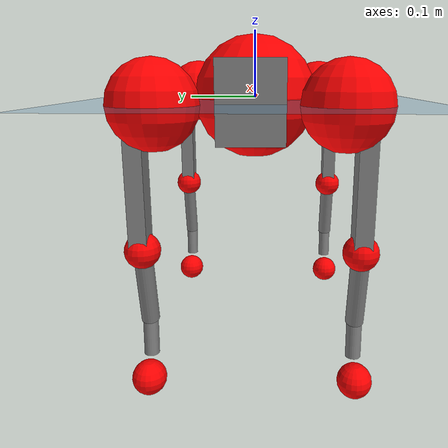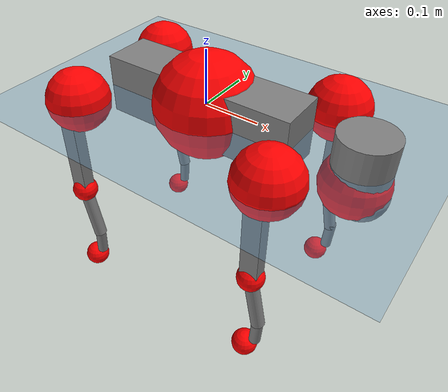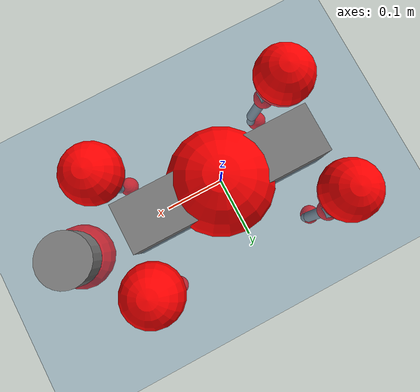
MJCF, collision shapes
<mujoco model="go2">
  <compiler angle="radian" assetdir="assets" balanceinertia="true" inertiafromgeom="false"/>

  <option timestep="0.005" density="1.2" viscosity="2e-05"/>

  <size nkey="1"/>

  <visual>
    <quality shadowsize="8192"/>
    <map shadowclip="0.5"/>
  </visual>

  <default>
    <default class="/">
      <geom contype="0" conaffinity="0" group="1" solref="-1000 -80"/>
      <site size="0.01 0.005 0.005" group="5"/>
      <general forcelimited="true" biastype="affine" gainprm="20" biasprm="0 -20 -0.5"/>
      <default class="go2">
        <joint armature="0.01" damping="0.01" frictionloss="0.2"/>
        <geom condim="1" margin="0.001"/>
        <default class="visual">
          <geom type="mesh" group="2"/>
        </default>
        <default class="collision">
          <geom group="3"/>
          <default class="foot">
            <geom size="0.022 0 0" condim="6" priority="1" friction="0.8 0.02 0.01" solimp="0.015 1 0.022"/>
          </default>
        </default>
        <default class="reward_collision_sphere">
          <geom group="5" rgba="1 0 0 1"/>
        </default>
      </default>
    </default>
  </default>

  <asset>
    <texture type="skybox" colorspace="auto" name="//unnamed_texture_0" builtin="gradient" rgb1="0.95 0.95 0.95" rgb2="0.95 0.95 0.95" width="100" height="600"/>
    <texture type="2d" colorspace="auto" name="texplane" builtin="checker" rgb1="0.345 0.575 0.748" rgb2="0.345 0.575 0.748" markrgb="1 1 1" width="512" height="512"/>
    <material name="MatPlane" class="/" texture="texplane" texuniform="true" texrepeat="2 2" specular="0.9"/>
    <material name="metal" class="/" rgba="0.9 0.95 0.95 1"/>
    <material name="black" class="/" rgba="0 0 0 1"/>
    <material name="white" class="/"/>
    <material name="gray" class="/" rgba="0.671705 0.692426 0.77427 1"/>
    <mesh name="base_0" class="/" file="base_0.obj"/>
    <mesh name="base_1" class="/" file="base_1.obj"/>
    <mesh name="base_2" class="/" file="base_2.obj"/>
    <mesh name="base_3" class="/" file="base_3.obj"/>
    <mesh name="base_4" class="/" file="base_4.obj"/>
    <mesh name="hip_0" class="/" file="hip_0.obj"/>
    <mesh name="hip_1" class="/" file="hip_1.obj"/>
    <mesh name="thigh_0" class="/" file="thigh_0.obj"/>
    <mesh name="thigh_1" class="/" file="thigh_1.obj"/>
    <mesh name="thigh_mirror_0" class="/" file="thigh_mirror_0.obj"/>
    <mesh name="thigh_mirror_1" class="/" file="thigh_mirror_1.obj"/>
    <mesh name="calf_0" class="/" file="calf_0.obj"/>
    <mesh name="calf_1" class="/" file="calf_1.obj"/>
    <mesh name="calf_mirror_0" class="/" file="calf_mirror_0.obj"/>
    <mesh name="calf_mirror_1" class="/" file="calf_mirror_1.obj"/>
    <mesh name="foot" class="/" file="foot.obj"/>
  </asset>

  <worldbody>
    <geom name="floor" class="/" size="100 100 0.125" type="plane" group="0" material="MatPlane"/>
    <light name="toplight_shadow" class="/" pos="0 0 5" dir="0.0990148 0.0990148 -0.990148" type="directional" ambient="0.04 0.04 0.04" diffuse="0.55 0.55 0.55" specular="0.12 0.12 0.12"/>
    <light name="toplight_fill" class="/" pos="0 0 5" dir="0.0990148 0.0990148 -0.990148" type="directional" castshadow="false" ambient="0.04 0.04 0.04" diffuse="0.3 0.3 0.3" specular="0.08 0.08 0.08"/>
    <body name="trunk" childclass="go2" pos="0.000619734 0.000415196 0.000901463" quat="1 0.000239789 -0.000317554 -0.000149022">
      <inertial pos="0.0214189 -0.000752037 -0.00493993" quat="-0.000347428 0.713656 -0.00103906 0.700496" mass="5.84986" diaginertia="0.0975638 0.0924772 0.0121558"/>
      <joint name="//unnamed_joint_0" type="free" armature="0" damping="0" frictionloss="0"/>
      <geom name="//unnamed_geom_1" class="visual" material="black" mesh="base_0"/>
      <geom name="//unnamed_geom_2" class="visual" material="black" mesh="base_1"/>
      <geom name="//unnamed_geom_3" class="visual" material="black" mesh="base_2"/>
      <geom name="//unnamed_geom_4" class="visual" material="white" mesh="base_3"/>
      <geom name="//unnamed_geom_5" class="visual" material="gray" mesh="base_4"/>
      <geom name="trunk_1" class="collision" size="0.177542 0.0441258 0.0538005" type="box"/>
      <geom name="trunk_2" class="collision" size="0.0471934 0.0424741" pos="0.278694 0 0.00865659" type="cylinder"/>
      <geom name="trunk_3" class="collision" size="0.0443618" pos="0.286517 0 -0.0519395"/>
      <geom name="//unnamed_geom_9" class="reward_collision_sphere" size="0.0943868"/>
      <geom name="//unnamed_geom_10" class="reward_collision_sphere" size="0.0566321" pos="0.273804 0 -0.0389546"/>
      <site name="imu" pos="-0.0296643 -0.00660884 0.0385778" size="0.00943868"/>
      <camera name="track" pos="0 -1.97615 0" quat="0.707107 0.707107 0 0" mode="trackcom"/>
      <camera name="ego_camera" pos="0.305096 0 0.0389546" quat="-0.5 -0.5 0.5 0.5"/>
      <body name="FL_hip" pos="0.188518 0.0458702 0.00226632" quat="1 0.000375928 -0.000124533 -0.000272125">
        <inertial pos="-0.00428182 0.00196201 -0.000400472" quat="0.497469 0.500111 0.506494 0.49586" mass="0.575356" diaginertia="0.000797808 0.00056571 0.000232607"/>
        <joint name="FL_hip_joint" pos="0 0 0" axis="0.999998 0.00181607 0.000865557" stiffness="0.000581453" range="-1.03716 1.05103" armature="0.00922477" damping="0.0102537" frictionloss="0.184551"/>
        <geom name="//unnamed_geom_11" class="visual" material="metal" mesh="hip_0"/>
        <geom name="//unnamed_geom_12" class="visual" material="gray" mesh="hip_1"/>
        <geom name="//unnamed_geom_13" class="collision" size="0.0434179 0.0188774" pos="0 0.0790458 0" quat="0.707107 0.707107 0 0" type="cylinder"/>
        <geom name="//unnamed_geom_14" class="reward_collision_sphere" size="0.0566321" pos="0 0.0691651 0"/>
        <body name="FL_thigh" pos="-0.000446441 0.0941237 0.00194422" quat="1 -4.02802e-05 0.00031731 -5.20568e-05">
          <inertial pos="-0.00401976 -0.0225925 -0.029514" quat="0.829539 0.0848421 -0.0198155 0.551611" mass="0.958743" diaginertia="0.00533243 0.00554346 0.000428177"/>
          <joint name="FL_thigh_joint" pos="0 0 0" axis="0.000339695 0.999998 0.0020036" range="-1.57268 3.51748" armature="0.00976342" damping="0" frictionloss="0.188978"/>
          <geom name="//unnamed_geom_15" class="visual" material="metal" mesh="thigh_0"/>
          <geom name="//unnamed_geom_16" class="visual" material="gray" mesh="thigh_1"/>
          <geom name="//unnamed_geom_17" class="collision" size="0.100522 0.0115624 0.0160458" pos="0 0 -0.0921926" quat="0.707107 0 0.707107 0" type="box"/>
          <body name="FL_calf" pos="0.000440549 0.000801685 -0.185043" quat="1 5.09792e-06 -0.000106062 -5.96971e-06">
            <inertial pos="0.00629031 0.000450728 -0.122445" quat="0.710282 0.00168903 -0.00480318 0.703899" mass="0.204473" diaginertia="0.0013212 0.00137212 2.58086e-05"/>
            <joint name="FL_calf_joint" pos="0 0 0" axis="-0.00534903 0.999982 0.00264599" range="-2.73997 -0.840485" armature="0.00940489" damping="0.00439599" frictionloss="0.186158"/>
            <geom name="//unnamed_geom_18" class="visual" material="gray" mesh="calf_0"/>
            <geom name="//unnamed_geom_19" class="visual" material="black" mesh="calf_1"/>
            <geom name="FL_calf0" class="collision" size="0.0113264 0.0566321" pos="0.00782298 0 -0.0519395" quat="0.994493 0 -0.104807 0" type="cylinder"/>
            <geom name="//unnamed_geom_21" class="collision" size="0.0103825 0.0306757" pos="0.0195575 0 -0.128117" quat="0.999688 0 0.0249974 0" type="cylinder"/>
            <geom name="//unnamed_geom_22" class="visual" pos="0 0 -0.184385" quat="1 0 0 0" material="black" mesh="foot"/>
            <geom name="FL_foot" class="foot" size="0.0169191" pos="-0.00195575 0 -0.184385"/>
            <geom name="//unnamed_geom_24" class="reward_collision_sphere" size="0.0235967"/>
            <geom name="//unnamed_geom_25" class="reward_collision_sphere" size="0.0235967" pos="-0.00195575 0 -0.184385"/>
            <site name="FL_foot" class="foot" pos="-0.00195575 0 -0.184385" size="0.00943868"/>
          </body>
        </body>
      </body>
      <body name="FR_hip" pos="0.188688 -0.0462032 0.00145498" quat="1 9.14358e-05 -9.52683e-05 -2.84408e-05">
        <inertial pos="-0.00535619 -0.00107295 -0.000689137" quat="0.496432 0.504454 0.501533 0.49754" mass="0.577013" diaginertia="0.000807651 0.000562359 0.000237181"/>
        <joint name="FR_hip_joint" pos="0 0 0" axis="0.999996 0.00266438 0.000187015" stiffness="0.00549063" range="-1.05975 1.04454" armature="0.00943597" damping="0.0135659" frictionloss="0.186484"/>
        <geom name="//unnamed_geom_26" class="visual" pos="0 1.06642e-09 4.57411e-08" quat="4.63268e-05 1 0 0" material="metal" mesh="hip_0"/>
        <geom name="//unnamed_geom_27" class="visual" pos="0 1.7288e-09 -1.13135e-07" quat="4.63268e-05 1 0 0" material="gray" mesh="hip_1"/>
        <geom name="//unnamed_geom_28" class="collision" size="0.0434179 0.0188774" pos="0 -0.0790458 0" quat="0.707107 0.707107 0 0" type="cylinder"/>
        <geom name="//unnamed_geom_29" class="reward_collision_sphere" size="0.0566321" pos="0 -0.0691651 0"/>
        <body name="FR_thigh" pos="-0.00070384 -0.0939287 0.00109165" quat="1 -4.94403e-05 1.29153e-05 2.77158e-05">
          <inertial pos="-0.00360625 0.0220411 -0.0290289" quat="0.553567 -0.0143588 0.0811962 0.828713" mass="0.976942" diaginertia="0.00543253 0.00554978 0.000430973"/>
          <joint name="FR_thigh_joint" pos="0 0 0" axis="-0.000875567 -0.999999 0.00106695" range="-3.50693 1.56438" armature="0.00955246" damping="0.0138545" frictionloss="0.192631"/>
          <geom name="//unnamed_geom_30" class="visual" material="metal" mesh="thigh_mirror_0"/>
          <geom name="//unnamed_geom_31" class="visual" material="gray" mesh="thigh_mirror_1"/>
          <geom name="//unnamed_geom_32" class="collision" size="0.100522 0.0115624 0.0160458" pos="0 0 -0.0921926" quat="0.707107 0 0.707107 0" type="box"/>
          <body name="FR_calf" pos="-0.000414333 3.6902e-05 -0.183725" quat="1 2.46773e-05 3.21947e-05 2.13687e-05">
            <inertial pos="0.00663149 0.000751161 -0.121218" quat="0.702429 -0.00860455 0.00315135 0.711695" mass="0.200193" diaginertia="0.00129796 0.00137491 2.52183e-05"/>
            <joint name="FR_calf_joint" pos="0 0 0" axis="0.00177924 -0.999991 0.00374582" range="0.839417 2.73989" armature="0.00919045" damping="0.00752292" frictionloss="0.18933"/>
            <geom name="//unnamed_geom_33" class="visual" material="gray" mesh="calf_mirror_0"/>
            <geom name="//unnamed_geom_34" class="visual" material="black" mesh="calf_mirror_1"/>
            <geom name="FR_calf0" class="collision" size="0.0122703 0.0566321" pos="0.00977873 0 -0.0519395" quat="0.995004 0 -0.0998334 0" type="cylinder"/>
            <geom name="//unnamed_geom_36" class="collision" size="0.0103825 0.0306757" pos="0.0195575 0 -0.128117" quat="0.999688 0 0.0249974 0" type="cylinder"/>
            <geom name="//unnamed_geom_37" class="visual" pos="0 0 -0.184385" quat="1 0 0 0" material="black" mesh="foot"/>
            <geom name="FR_foot" class="foot" size="0.0224055" pos="-0.00195575 0 -0.184385"/>
            <geom name="//unnamed_geom_39" class="reward_collision_sphere" size="0.0235967"/>
            <geom name="//unnamed_geom_40" class="reward_collision_sphere" size="0.0235967" pos="-0.00195575 0 -0.184385"/>
            <site name="FR_foot" class="foot" pos="-0.00195575 0 -0.184385" size="0.00943868"/>
          </body>
        </body>
      </body>
      <body name="RL_hip" pos="-0.189478 0.0470049 -0.001397" quat="1 8.9188e-05 -0.000206394 0.000422294">
        <inertial pos="0.00541155 0.00206527 -0.00106905" quat="0.506692 0.498655 0.496439 0.498152" mass="0.571876" diaginertia="0.000789504 0.000564746 0.000232157"/>
        <joint name="RL_hip_joint" pos="0 0 0" axis="-0.999893 0.00165862 -0.0145373" stiffness="0.00145082" range="-1.02502 1.0543" armature="0.00941886" damping="0.00794745" frictionloss="0.192986"/>
        <geom name="//unnamed_geom_41" class="visual" pos="-9.77567e-10 0 -1.91626e-07" quat="4.63268e-05 0 1 0" material="metal" mesh="hip_0"/>
        <geom name="//unnamed_geom_42" class="visual" pos="-1.58475e-09 0 -1.69945e-07" quat="4.63268e-05 0 1 0" material="gray" mesh="hip_1"/>
        <geom name="//unnamed_geom_43" class="collision" size="0.0434179 0.0188774" pos="0 0.0790458 0" quat="0.707107 0.707107 0 0" type="cylinder"/>
        <geom name="//unnamed_geom_44" class="reward_collision_sphere" size="0.0566321" pos="0 0.0691651 0"/>
        <body name="RL_thigh" pos="-0.000146891 0.0937709 -0.00111824" quat="1 7.84932e-06 -3.68009e-05 2.51602e-05">
          <inertial pos="-0.00384393 -0.021528 -0.0296706" quat="0.830383 0.0857762 -0.0201684 0.550181" mass="0.954561" diaginertia="0.00522619 0.00544396 0.000420873"/>
          <joint name="RL_thigh_joint" pos="0 0 0" axis="0.000857498 1 3.65383e-06" stiffness="0.000555611" range="-0.532383 4.53131" armature="0.00921963" damping="0.0112417" frictionloss="0.187369"/>
          <geom name="//unnamed_geom_45" class="visual" material="metal" mesh="thigh_0"/>
          <geom name="//unnamed_geom_46" class="visual" material="gray" mesh="thigh_1"/>
          <geom name="//unnamed_geom_47" class="collision" size="0.100522 0.0115624 0.0160458" pos="0 0 -0.0921926" quat="0.707107 0 0.707107 0" type="box"/>
          <body name="RL_calf" pos="0.00117743 -0.00163154 -0.184174" quat="1 -9.55522e-05 9.04622e-05 0.000184212">
            <inertial pos="0.00520736 0.000476429 -0.123081" quat="0.710036 0.00204208 -0.00434392 0.704149" mass="0.204143" diaginertia="0.00133477 0.00136795 2.59263e-05"/>
            <joint name="RL_calf_joint" pos="0 0 0" axis="0.0038591 0.999935 0.0107332" range="-2.72318 -0.837192" armature="0.00964837" damping="0.000734354" frictionloss="0.180279"/>
            <geom name="//unnamed_geom_48" class="visual" material="gray" mesh="calf_0"/>
            <geom name="//unnamed_geom_49" class="visual" material="black" mesh="calf_1"/>
            <geom name="RL_calf0" class="collision" size="0.0122703 0.0566321" pos="0.00977873 0 -0.0519395" quat="0.995004 0 -0.0998334 0" type="cylinder"/>
            <geom name="//unnamed_geom_51" class="collision" size="0.0103825 0.0306757" pos="0.0195575 0 -0.128117" quat="0.999688 0 0.0249974 0" type="cylinder"/>
            <geom name="//unnamed_geom_52" class="visual" pos="0 0 -0.184385" quat="1 0 0 0" material="black" mesh="foot"/>
            <geom name="RL_foot" class="foot" size="0.0185958" pos="-0.00195575 0 -0.184385"/>
            <geom name="//unnamed_geom_54" class="reward_collision_sphere" size="0.0235967"/>
            <geom name="//unnamed_geom_55" class="reward_collision_sphere" size="0.0235967" pos="-0.00195575 0 -0.184385"/>
            <site name="RL_foot" class="foot" pos="-0.00195575 0 -0.184385" size="0.00943868"/>
          </body>
        </body>
      </body>
      <body name="RR_hip" pos="-0.189241 -0.0466008 -0.00180831" quat="1 -0.000123676 -0.000213486 0.000192262">
        <inertial pos="0.00506035 -0.00167476 0.000644201" quat="0.499452 0.496971 0.498163 0.505373" mass="0.55703" diaginertia="0.000774667 0.000550093 0.000230147"/>
        <joint name="RR_hip_joint" pos="0 0 0" axis="-0.999991 0.00273883 0.0031423" range="-1.05884 1.05188" armature="0.0098968" damping="0.00291799" frictionloss="0.185331"/>
        <geom name="//unnamed_geom_56" class="visual" pos="9.7792e-10 1.06642e-09 -2.37367e-07" quat="2.14617e-09 4.63268e-05 4.63268e-05 -1" material="metal" mesh="hip_0"/>
        <geom name="//unnamed_geom_57" class="visual" pos="1.58388e-09 1.7288e-09 -5.68094e-08" quat="2.14617e-09 4.63268e-05 4.63268e-05 -1" material="gray" mesh="hip_1"/>
        <geom name="//unnamed_geom_58" class="collision" size="0.0434179 0.0188774" pos="0 -0.0790458 0" quat="0.707107 0.707107 0 0" type="cylinder"/>
        <geom name="//unnamed_geom_59" class="reward_collision_sphere" size="0.0566321" pos="0 -0.0691651 0"/>
        <body name="RR_thigh" pos="0.00063536 -0.0946074 -0.0005638" quat="1 -1.35608e-06 1.31529e-06 -6.04937e-07">
          <inertial pos="-0.00264308 0.0215315 -0.0283758" quat="0.551445 -0.0203126 0.0846962 0.829652" mass="0.971307" diaginertia="0.00527276 0.00550461 0.000426805"/>
          <joint name="RR_thigh_joint" pos="0 0 0" axis="0.010685 -0.999941 0.00202588" range="-4.55339 0.532767" armature="0.00930304" damping="0.0126292" frictionloss="0.189229"/>
          <geom name="//unnamed_geom_60" class="visual" material="metal" mesh="thigh_mirror_0"/>
          <geom name="//unnamed_geom_61" class="visual" material="gray" mesh="thigh_mirror_1"/>
          <geom name="//unnamed_geom_62" class="collision" size="0.100522 0.0115624 0.0160458" pos="0 0 -0.0921926" quat="0.707107 0 0.707107 0" type="box"/>
          <body name="RR_calf" pos="0.00183506 -9.60718e-05 -0.185048" quat="1 -9.49449e-05 -4.02937e-06 -6.94449e-05">
            <inertial pos="0.00566187 0.000608949 -0.122457" quat="0.704628 -0.00309498 0.00243316 0.709566" mass="0.206058" diaginertia="0.00133751 0.00139277 2.59932e-05"/>
            <joint name="RR_calf_joint" pos="0 0 0" axis="-0.00282685 -0.99997 0.00723539" range="0.835123 2.70796" armature="0.00979568" damping="0.00485783" frictionloss="0.188364"/>
            <geom name="//unnamed_geom_63" class="visual" material="gray" mesh="calf_mirror_0"/>
            <geom name="//unnamed_geom_64" class="visual" material="black" mesh="calf_mirror_1"/>
            <geom name="RR_calf0" class="collision" size="0.0122703 0.0566321" pos="0.00977873 0 -0.0519395" quat="0.995004 0 -0.0998334 0" type="cylinder"/>
            <geom name="//unnamed_geom_66" class="collision" size="0.0103825 0.0306757" pos="0.0195575 0 -0.128117" quat="0.999688 0 0.0249974 0" type="cylinder"/>
            <geom name="//unnamed_geom_67" class="visual" pos="0 0 -0.184385" quat="1 0 0 0" material="black" mesh="foot"/>
            <geom name="RR_foot" class="foot" size="0.0229146" pos="-0.00195575 0 -0.184385"/>
            <geom name="//unnamed_geom_69" class="reward_collision_sphere" size="0.0235967"/>
            <geom name="//unnamed_geom_70" class="reward_collision_sphere" size="0.0235967" pos="-0.00195575 0 -0.184385"/>
            <site name="RR_foot" class="foot" pos="-0.00195575 0 -0.184385" size="0.00943868"/>
          </body>
        </body>
      </body>
    </body>
  </worldbody>

  <contact>
    <pair class="/" geom1="floor" geom2="FL_foot" name="//unnamed_contact_0"/>
    <pair class="/" geom1="floor" geom2="FR_foot" name="//unnamed_contact_1"/>
    <pair class="/" geom1="floor" geom2="RL_foot" name="//unnamed_contact_2"/>
    <pair class="/" geom1="floor" geom2="RR_foot" name="//unnamed_contact_3"/>
  </contact>

  <actuator>
    <general name="FL_hip" class="/" joint="FL_hip_joint" forcerange="-22.731 22.731" gainprm="19.0116" biasprm="0 -19.0116 -0.472933"/>
    <general name="FL_thigh" class="/" joint="FL_thigh_joint" forcerange="-22.5442 22.5442" gainprm="19.0116" biasprm="0 -19.0116 -0.472933"/>
    <general name="FL_calf" class="/" joint="FL_calf_joint" forcerange="-41.9184 41.9184" gainprm="19.0116" biasprm="0 -19.0116 -0.472933"/>
    <general name="FR_hip" class="/" joint="FR_hip_joint" forcerange="-22.3392 22.3392" gainprm="19.0116" biasprm="0 -19.0116 -0.472933"/>
    <general name="FR_thigh" class="/" joint="FR_thigh_joint" forcerange="-21.5532 21.5532" gainprm="19.0116" biasprm="0 -19.0116 -0.472933"/>
    <general name="FR_calf" class="/" joint="FR_calf_joint" forcerange="-45.2533 45.2533" gainprm="19.0116" biasprm="0 -19.0116 -0.472933"/>
    <general name="RL_hip" class="/" joint="RL_hip_joint" forcerange="-22.9451 22.9451" gainprm="19.0116" biasprm="0 -19.0116 -0.472933"/>
    <general name="RL_thigh" class="/" joint="RL_thigh_joint" forcerange="-21.6578 21.6578" gainprm="19.0116" biasprm="0 -19.0116 -0.472933"/>
    <general name="RL_calf" class="/" joint="RL_calf_joint" forcerange="-42.276 42.276" gainprm="19.0116" biasprm="0 -19.0116 -0.472933"/>
    <general name="RR_hip" class="/" joint="RR_hip_joint" forcerange="-22.6392 22.6392" gainprm="19.0116" biasprm="0 -19.0116 -0.472933"/>
    <general name="RR_thigh" class="/" joint="RR_thigh_joint" forcerange="-21.3253 21.3253" gainprm="19.0116" biasprm="0 -19.0116 -0.472933"/>
    <general name="RR_calf" class="/" joint="RR_calf_joint" forcerange="-43.374 43.374" gainprm="19.0116" biasprm="0 -19.0116 -0.472933"/>
  </actuator>

  <sensor>
    <gyro site="imu" name="imu_angular_velocity"/>
    <velocimeter site="imu" name="imu_linear_velocity"/>
    <framelinvel objtype="site" objname="FL_foot" name="FL_foot_global_linear_velocity"/>
    <framelinvel objtype="site" objname="FR_foot" name="FR_foot_global_linear_velocity"/>
    <framelinvel objtype="site" objname="RL_foot" name="RL_foot_global_linear_velocity"/>
    <framelinvel objtype="site" objname="RR_foot" name="RR_foot_global_linear_velocity"/>
  </sensor>

  <keyframe>
    <key name="home" qpos="0 0 0.325 1 0 0 0 0.1 0.8 -1.5 -0.1 -0.8 1.5 -0.1 0.8 -1.5 0.1 -0.8 1.5"/>
  </keyframe>
</mujoco>
